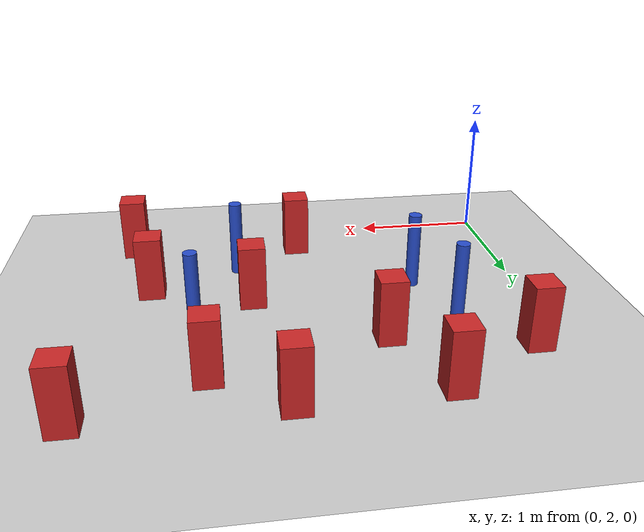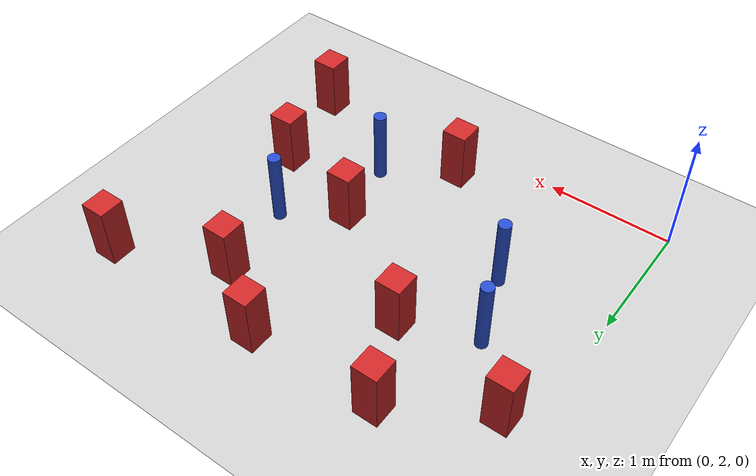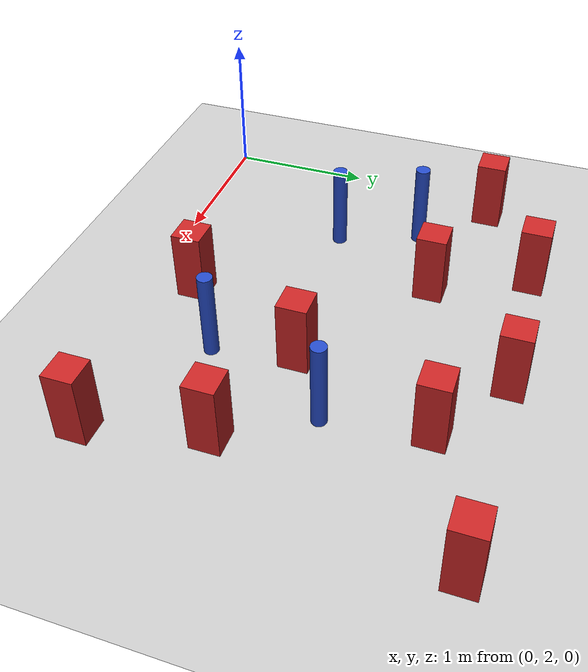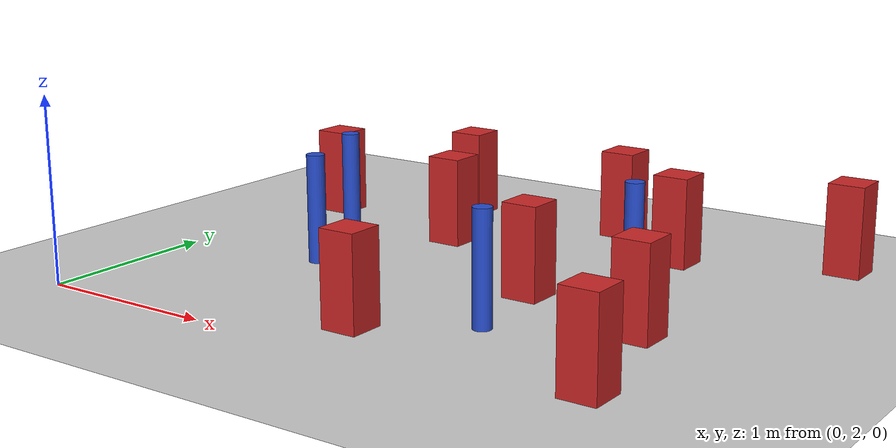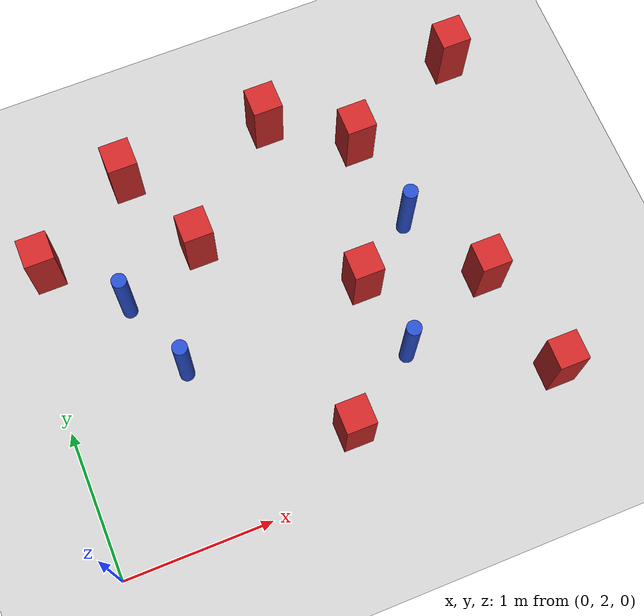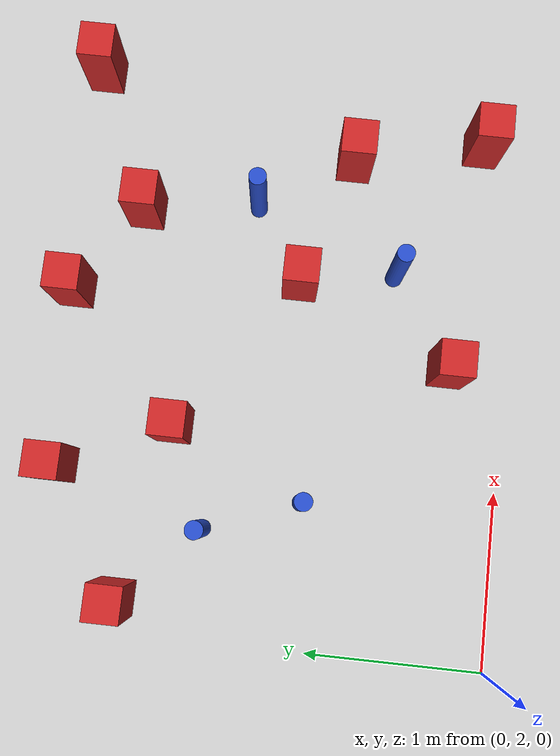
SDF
<sdf version="1.6">
 <world name="default">
  <model name="ground_plane">
   <static>1</static>
   <link name="link">
    <collision name="collision">
     <geometry><plane><normal>0 0 1</normal><size>100 100</size></plane></geometry>
     <surface><friction><ode><mu>100</mu><mu2>50</mu2></ode></friction></surface>
    </collision>
    <visual name="visual">
     <cast_shadows>0</cast_shadows>
     <geometry><plane><normal>0 0 1</normal><size>100 100</size></plane></geometry>
     <material>
      <ambient>1.0 1.0 1.0 1.0</ambient>
      <diffuse>0.8 0.8 0.8 1.0</diffuse>
      <specular>0.01 0.01 0.01 1.000000</specular>
     </material>
    </visual>
   </link>
  </model>
  <model name="square_post_obstacle5">
   <static>true</static>
   <pose>2.1114799383 3.23724180372 1.91545236811e-07 -7.35059704564e-06 1.12565212e-07 2.39332434364e-05</pose>
   <link name="link">
    <pose>0 0 0.25 0 -0 0</pose>
    <inertial>
     <mass>100</mass>
     <inertia>
      <ixx>0.166667</ixx>
      <ixy>0</ixy>
      <ixz>0</ixz>
      <iyy>0.166667</iyy>
      <iyz>0</iyz>
      <izz>0.166667</izz>
     </inertia>
    </inertial>
    <collision name="collision"><geometry><box><size>.2 .2 .5</size></box></geometry></collision>
    <visual name="visual">
     <geometry><box><size>.2 .2 .5</size></box></geometry>
     <material>
      <script><name>Gazebo/Red</name><uri>file://media/materials/scripts/gazebo.material</uri></script>
     </material>
    </visual>
   </link>
  </model>
  <model name="square_post_obstacle41">
   <static>true</static>
   <pose>1.9316861947 4.54639131153 1.91545236811e-07 -7.35059704564e-06 1.12565212e-07 2.39332434364e-05</pose>
   <link name="link">
    <pose>0 0 0.25 0 -0 0</pose>
    <inertial>
     <mass>100</mass>
     <inertia>
      <ixx>0.166667</ixx>
      <ixy>0</ixy>
      <ixz>0</ixz>
      <iyy>0.166667</iyy>
      <iyz>0</iyz>
      <izz>0.166667</izz>
     </inertia>
    </inertial>
    <collision name="collision"><geometry><box><size>.2 .2 .5</size></box></geometry></collision>
    <visual name="visual">
     <geometry><box><size>.2 .2 .5</size></box></geometry>
     <material>
      <script><name>Gazebo/Red</name><uri>file://media/materials/scripts/gazebo.material</uri></script>
     </material>
    </visual>
   </link>
  </model>
  <model name="square_post_obstacle44">
   <static>true</static>
   <pose>3.0543779842 2.2329918 1.91545236811e-07 -7.35059704564e-06 1.12565212e-07 2.39332434364e-05</pose>
   <link name="link">
    <pose>0 0 0.25 0 -0 0</pose>
    <inertial>
     <mass>100</mass>
     <inertia>
      <ixx>0.166667</ixx>
      <ixy>0</ixy>
      <ixz>0</ixz>
      <iyy>0.166667</iyy>
      <iyz>0</iyz>
      <izz>0.166667</izz>
     </inertia>
    </inertial>
    <collision name="collision"><geometry><box><size>.2 .2 .5</size></box></geometry></collision>
    <visual name="visual">
     <geometry><box><size>.2 .2 .5</size></box></geometry>
     <material>
      <script><name>Gazebo/Red</name><uri>file://media/materials/scripts/gazebo.material</uri></script>
     </material>
    </visual>
   </link>
  </model>
  <model name="square_post_obstacle72">
   <static>true</static>
   <pose>1.19289978525 3.87084790823 1.91545236811e-07 -7.35059704564e-06 1.12565212e-07 2.39332434364e-05</pose>
   <link name="link">
    <pose>0 0 0.25 0 -0 0</pose>
    <inertial>
     <mass>100</mass>
     <inertia>
      <ixx>0.166667</ixx>
      <ixy>0</ixy>
      <ixz>0</ixz>
      <iyy>0.166667</iyy>
      <iyz>0</iyz>
      <izz>0.166667</izz>
     </inertia>
    </inertial>
    <collision name="collision"><geometry><box><size>.2 .2 .5</size></box></geometry></collision>
    <visual name="visual">
     <geometry><box><size>.2 .2 .5</size></box></geometry>
     <material>
      <script><name>Gazebo/Red</name><uri>file://media/materials/scripts/gazebo.material</uri></script>
     </material>
    </visual>
   </link>
  </model>
  <model name="pole_obstacle108">
   <static>true</static>
   <pose>0.626406512663 3.64642340075 7.38925637345e-09 -8.47170692799e-08 1.2497676509e-08 -1.74513093016e-07</pose>
   <link name="link">
    <pose>0 0 0.3 0 -0 0</pose>
    <inertial>
     <mass>1</mass>
     <inertia><ixx>0.145833</ixx><ixy>0</ixy><ixz>0</ixz><iyy>0.145833</iyy><iyz>0</iyz><izz>0.125</izz></inertia>
    </inertial>
    <collision name="collision">
     <geometry><cylinder><radius>0.05</radius><length>.6</length></cylinder></geometry>
    </collision>
    <visual name="visual">
     <geometry><cylinder><radius>0.05</radius><length>.6</length></cylinder></geometry>
     <material>
      <script><name>Gazebo/Blue</name><uri>file://media/materials/scripts/gazebo.material</uri></script>
     </material>
    </visual>
   </link>
  </model>
  <model name="pole_obstacle117">
   <static>true</static>
   <pose>0.829466836973 3.10124996302 7.38925637345e-09 -8.47170692799e-08 1.2497676509e-08 -1.74513093016e-07</pose>
   <link name="link">
    <pose>0 0 0.3 0 -0 0</pose>
    <inertial>
     <mass>1</mass>
     <inertia><ixx>0.145833</ixx><ixy>0</ixy><ixz>0</ixz><iyy>0.145833</iyy><iyz>0</iyz><izz>0.125</izz></inertia>
    </inertial>
    <collision name="collision">
     <geometry><cylinder><radius>0.05</radius><length>.6</length></cylinder></geometry>
    </collision>
    <visual name="visual">
     <geometry><cylinder><radius>0.05</radius><length>.6</length></cylinder></geometry>
     <material>
      <script><name>Gazebo/Blue</name><uri>file://media/materials/scripts/gazebo.material</uri></script>
     </material>
    </visual>
   </link>
  </model>
  <model name="square_post_obstacle108">
   <static>true</static>
   <pose>1.68257461443 2.34215414196 1.91545236811e-07 -7.35059704564e-06 1.12565212e-07 2.39332434364e-05</pose>
   <link name="link">
    <pose>0 0 0.25 0 -0 0</pose>
    <inertial>
     <mass>100</mass>
     <inertia>
      <ixx>0.166667</ixx>
      <ixy>0</ixy>
      <ixz>0</ixz>
      <iyy>0.166667</iyy>
      <iyz>0</iyz>
      <izz>0.166667</izz>
     </inertia>
    </inertial>
    <collision name="collision"><geometry><box><size>.2 .2 .5</size></box></geometry></collision>
    <visual name="visual">
     <geometry><box><size>.2 .2 .5</size></box></geometry>
     <material>
      <script><name>Gazebo/Red</name><uri>file://media/materials/scripts/gazebo.material</uri></script>
     </material>
    </visual>
   </link>
  </model>
  <model name="square_post_obstacle152">
   <static>true</static>
   <pose>2.88037979498 2.98938264803 1.91545236811e-07 -7.35059704564e-06 1.12565212e-07 2.39332434364e-05</pose>
   <link name="link">
    <pose>0 0 0.25 0 -0 0</pose>
    <inertial>
     <mass>100</mass>
     <inertia>
      <ixx>0.166667</ixx>
      <ixy>0</ixy>
      <ixz>0</ixz>
      <iyy>0.166667</iyy>
      <iyz>0</iyz>
      <izz>0.166667</izz>
     </inertia>
    </inertial>
    <collision name="collision"><geometry><box><size>.2 .2 .5</size></box></geometry></collision>
    <visual name="visual">
     <geometry><box><size>.2 .2 .5</size></box></geometry>
     <material>
      <script><name>Gazebo/Red</name><uri>file://media/materials/scripts/gazebo.material</uri></script>
     </material>
    </visual>
   </link>
  </model>
  <model name="pole_obstacle161">
   <static>true</static>
   <pose>2.54736153965 3.53073792887 7.38925637345e-09 -8.47170692798e-08 1.24976764939e-08 -1.74513093025e-07</pose>
   <link name="link">
    <pose>0 0 0.3 0 -0 0</pose>
    <inertial>
     <mass>1</mass>
     <inertia><ixx>0.145833</ixx><ixy>0</ixy><ixz>0</ixz><iyy>0.145833</iyy><iyz>0</iyz><izz>0.125</izz></inertia>
    </inertial>
    <collision name="collision">
     <geometry><cylinder><radius>0.05</radius><length>.6</length></cylinder></geometry>
    </collision>
    <visual name="visual">
     <geometry><cylinder><radius>0.05</radius><length>.6</length></cylinder></geometry>
     <material>
      <script><name>Gazebo/Blue</name><uri>file://media/materials/scripts/gazebo.material</uri></script>
     </material>
    </visual>
   </link>
  </model>
  <model name="square_post_obstacle181">
   <static>true</static>
   <pose>2.45645565359 4.18837654641 1.91545236811e-07 -7.35059704564e-06 1.12565212e-07 2.39332434364e-05</pose>
   <link name="link">
    <pose>0 0 0.25 0 -0 0</pose>
    <inertial>
     <mass>100</mass>
     <inertia>
      <ixx>0.166667</ixx>
      <ixy>0</ixy>
      <ixz>0</ixz>
      <iyy>0.166667</iyy>
      <iyz>0</iyz>
      <izz>0.166667</izz>
     </inertia>
    </inertial>
    <collision name="collision"><geometry><box><size>.2 .2 .5</size></box></geometry></collision>
    <visual name="visual">
     <geometry><box><size>.2 .2 .5</size></box></geometry>
     <material>
      <script><name>Gazebo/Red</name><uri>file://media/materials/scripts/gazebo.material</uri></script>
     </material>
    </visual>
   </link>
  </model>
  <model name="pole_obstacle208">
   <static>true</static>
   <pose>2.20457357284 2.68653578301 7.38925637345e-09 -8.47170692798e-08 1.24976764939e-08 -1.74513093025e-07</pose>
   <link name="link">
    <pose>0 0 0.3 0 -0 0</pose>
    <inertial>
     <mass>1</mass>
     <inertia><ixx>0.145833</ixx><ixy>0</ixy><ixz>0</ixz><iyy>0.145833</iyy><iyz>0</iyz><izz>0.125</izz></inertia>
    </inertial>
    <collision name="collision">
     <geometry><cylinder><radius>0.05</radius><length>.6</length></cylinder></geometry>
    </collision>
    <visual name="visual">
     <geometry><cylinder><radius>0.05</radius><length>.6</length></cylinder></geometry>
     <material>
      <script><name>Gazebo/Blue</name><uri>file://media/materials/scripts/gazebo.material</uri></script>
     </material>
    </visual>
   </link>
  </model>
  <model name="square_post_obstacle205">
   <static>true</static>
   <pose>3.29620884815 4.54453806293 1.91545236811e-07 -7.35059704564e-06 1.12565212e-07 2.39332434364e-05</pose>
   <link name="link">
    <pose>0 0 0.25 0 -0 0</pose>
    <inertial>
     <mass>100</mass>
     <inertia>
      <ixx>0.166667</ixx>
      <ixy>0</ixy>
      <ixz>0</ixz>
      <iyy>0.166667</iyy>
      <iyz>0</iyz>
      <izz>0.166667</izz>
     </inertia>
    </inertial>
    <collision name="collision"><geometry><box><size>.2 .2 .5</size></box></geometry></collision>
    <visual name="visual">
     <geometry><box><size>.2 .2 .5</size></box></geometry>
     <material>
      <script><name>Gazebo/Red</name><uri>file://media/materials/scripts/gazebo.material</uri></script>
     </material>
    </visual>
   </link>
  </model>
  <model name="square_post_obstacle212">
   <static>true</static>
   <pose>0.198442964805 4.08173998808 1.91545236811e-07 -7.35059704564e-06 1.12565212e-07 2.39332434364e-05</pose>
   <link name="link">
    <pose>0 0 0.25 0 -0 0</pose>
    <inertial>
     <mass>100</mass>
     <inertia>
      <ixx>0.166667</ixx>
      <ixy>0</ixy>
      <ixz>0</ixz>
      <iyy>0.166667</iyy>
      <iyz>0</iyz>
      <izz>0.166667</izz>
     </inertia>
    </inertial>
    <collision name="collision"><geometry><box><size>.2 .2 .5</size></box></geometry></collision>
    <visual name="visual">
     <geometry><box><size>.2 .2 .5</size></box></geometry>
     <material>
      <script><name>Gazebo/Red</name><uri>file://media/materials/scripts/gazebo.material</uri></script>
     </material>
    </visual>
   </link>
  </model>
  <model name="square_post_obstacle216">
   <static>true</static>
   <pose>0.901522964805 4.50817998808 1.91545236811e-07 -7.35059704564e-06 1.12565212e-07 2.39332434364e-05</pose>
   <link name="link">
    <pose>0 0 0.25 0 -0 0</pose>
    <inertial>
     <mass>100</mass>
     <inertia>
      <ixx>0.166667</ixx>
      <ixy>0</ixy>
      <ixz>0</ixz>
      <iyy>0.166667</iyy>
      <iyz>0</iyz>
      <izz>0.166667</izz>
     </inertia>
    </inertial>
    <collision name="collision"><geometry><box><size>.2 .2 .5</size></box></geometry></collision>
    <visual name="visual">
     <geometry><box><size>.2 .2 .5</size></box></geometry>
     <material>
      <script><name>Gazebo/Red</name><uri>file://media/materials/scripts/gazebo.material</uri></script>
     </material>
    </visual>
   </link>
  </model>
 </world>
</sdf>
